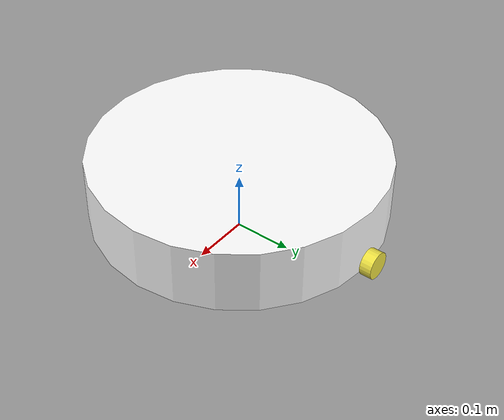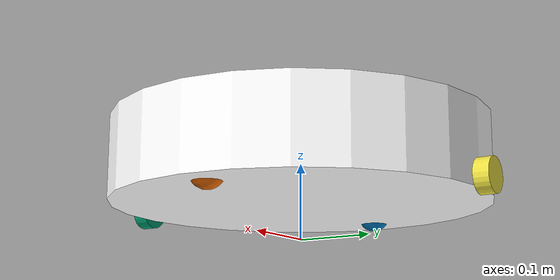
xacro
<?xml version='1.0'?>
<robot name="Edymobile" xmlns:xacro="http://ros.org/wiki/xacro">

	<material name="white">
		<color rgba="1 1 1 1"/>
	</material>

   <link name="base_link" />
   <!-- ********************** ROBOT BASE *********************************  -->
   <link name="base_center" >
	<visual>
	<origin xyz="0 0 0" rpy="0 0 0"/>
	<geometry>
		<cylinder radius="0.25" length="0.11"/>
	</geometry>
	<material name="white"/>
	</visual>
	<collision>
	<origin xyz="0 0 0" rpy="0 0 0"/>
	<geometry>
		<cylinder radius="0.25" length="0.11"/>
	</geometry>
	</collision>
	<inertial>
		<mass value="3"/>
		<inertia ixx="0.0499" ixy="0.0" ixz="0.0" iyy="0.0499" iyz="0.0" izz="0.09375"/>
	</inertial>
   </link>
   <!-- ********************** LEFT WHEEL *********************************  -->
   <link name="left_wheel" >
	<visual>
	<origin xyz="0 0 0" rpy="1.5707 -0 0"/>
	<geometry>
		<cylinder radius="0.0225" length="0.02"/>
	</geometry>
	</visual>
	<collision>
	<origin xyz="0 0 0" rpy="1.5707 -0 0"/>
	<geometry>
		<cylinder radius="0.0225" length="0.02"/>
	</geometry>
	</collision>
	<inertial>
		<mass value="0.5"/>
		<inertia ixx="0.00080" ixy="0.0" ixz="0.0" iyy="0.00080" iyz="0.0" izz="0.000266"/>
	</inertial>
   </link>
   <!-- ********************** RIGHT WHEEL *********************************  -->
   <link name="right_wheel" >
	<visual>
	<origin xyz="0 0 0" rpy="1.5707 -0 0"/>
	<geometry>
		<cylinder radius="0.0225" length="0.02"/>
	</geometry>
	</visual>
	<collision>
	<origin xyz="0 0 0" rpy="1.5707 -0 0"/>
	<geometry>
		<cylinder radius="0.0225" length="0.02"/>
	</geometry>
	</collision>
	<inertial>
		<mass value="0.5"/>
		<inertia ixx="0.00080" ixy="0.0" ixz="0.0" iyy="0.00080" iyz="0.0" izz="0.000266"/>
	</inertial>
   </link>
   <!-- ********************** BALL 1 *********************************  -->
   <link name="ball_1" >
	<visual>
	<origin xyz="0 0 0" rpy="1.5707 -0 0"/>
	<geometry>
		<sphere radius="0.0225"/>
	</geometry>
	</visual>
	<collision>
	<origin xyz="0 0 0" rpy="0 0 0"/>
	<geometry>
		<sphere radius="0.0225"/>
	</geometry>
	</collision>
	<inertial>
		<mass value="0.2"/>
		<inertia ixx="0.0000125" ixy="0.0" ixz="0.0" iyy="0.0000125" iyz="0.0" izz="0.0000125"/>
	</inertial>
   </link>
   <!-- ********************** BALL 2 *********************************  -->
   <link name="ball_2" >
	<visual>
	<origin xyz="0 0 0" rpy="1.5707 -0 0"/>
	<geometry>
		<sphere radius="0.0225"/>
	</geometry>
	</visual>
	<collision>
	<origin xyz="0 0 0" rpy="0 0 0"/>
	<geometry>
		<sphere radius="0.0225"/>
	</geometry>
	</collision>
	<inertial>
		<mass value="0.2"/>
		<inertia ixx="0.0000125" ixy="0.0" ixz="0.0" iyy="0.0000125" iyz="0.0" izz="0.0000125"/>
	</inertial>
  </link>

  <gazebo reference="$ball_1">
	  <mu1 value="0"/>
	  <mu2 value="0"/>
  </gazebo>
  <gazebo reference="$ball_2">
	  <mu1 value="0"/>
	  <mu2 value="0"/>
  </gazebo>

   <!-- ********************** JOINTS *********************************  -->
  <joint name="joint0" type="fixed">
   	<parent link="base_link"/>
   	<child link="base_center"/>
   	<origin xyz="0 0 0.1" rpy="0 0 0"/>
  </joint>

  <joint name="left_wheel_joint" type="continuous">
   	<parent link="base_center"/>
   	<child link="left_wheel"/>
   	<origin xyz="0 -0.26 -0.0425"/>
      	<axis xyz="0 1 0"/>
	<limit effort="-1" velocity ="-1"/>
	<dynamics spring_reference="0" spring_stiffness="0" damping ="0"/>
  </joint>

  <transmission name="left_wheel_trans">
	<type>transmission_interface/SimpleTransmission</type>
	<actuator name="$left_wheel_motor">
	<mechanicalReduction>1</mechanicalReduction>
	</actuator>
	<joint name="left_wheel_joint">
	<hardwareInterface>hardware_interface/VelocityJointInterface</hardwareInterface>
	</joint>
  </transmission>

  <gazebo reference="$left_wheel">
	  <mu1 value="200.0"/>
	  <mu2 value="100.0"/>
	  <kp value="10000000.0" />
	  <kd value="1.0" />
  </gazebo>

  <joint name="right_wheel_joint" type="continuous">
  	<parent link="base_center"/>
  	<child link="right_wheel"/>
  	<origin xyz="0 0.26 -0.0425"/>
      	<axis xyz="0 1 0"/>
	<limit  effort="-1" velocity ="-1"/>
	<dynamics spring_reference="0" spring_stiffness="0" damping ="0"/>
  </joint>

  <transmission name="right_wheel_trans">
	<type>transmission_interface/SimpleTransmission</type>
	<actuator name="$right_wheel_motor">
	<mechanicalReduction>1</mechanicalReduction>
	</actuator>
	<joint name="right_wheel_joint">
	<hardwareInterface>hardware_interface/VelocityJointInterface</hardwareInterface>
	</joint>
  </transmission>

  <gazebo reference="$right_wheel">
	  <mu1 value="200.0"/>
	  <mu2 value="100.0"/>
	  <kp value="10000000.0" />
	  <kd value="1.0" />
  </gazebo>

  <joint name="joint3" type="fixed">
  	<parent link="base_center"/>
  	<child link="ball_1"/>
  	<origin xyz="-0.2 0 -0.0425" rpy="0 0 0"/>
  </joint>

  <joint name="joint4" type="fixed">
  	<parent link="base_center"/>
  	<child link="ball_2"/>
  	<origin xyz="0.2 0 -0.0425" rpy="0 0 0"/>
  </joint>

	<!-- Diff drive -->
	<gazebo>
	<plugin name="differential_drive_controller" filename="
	libgazebo_ros_diff_drive.so">
	<alwaysOn>true</alwaysOn>
	<updateRate>10</updateRate>
	<leftJoint>left_wheel_joint</leftJoint>
	<rightJoint>right_wheel_joint</rightJoint>
	<wheelSeparation>0.52</wheelSeparation>
	<wheelDiameter>0.045</wheelDiameter>
	<commandTopic>cmd_vel</commandTopic>
	<odometryTopic>odom</odometryTopic>
	<odometryFrame>odom</odometryFrame>
	<robotBaseFrame>base_link</robotBaseFrame>
	</plugin>
	</gazebo>

  <gazebo>
  <plugin name="gazebo_ros_control" filename="libgazebo_ros_control.so">
  	<robotNamespace>/</robotNamespace>
   </plugin>
   </gazebo>

</robot>
